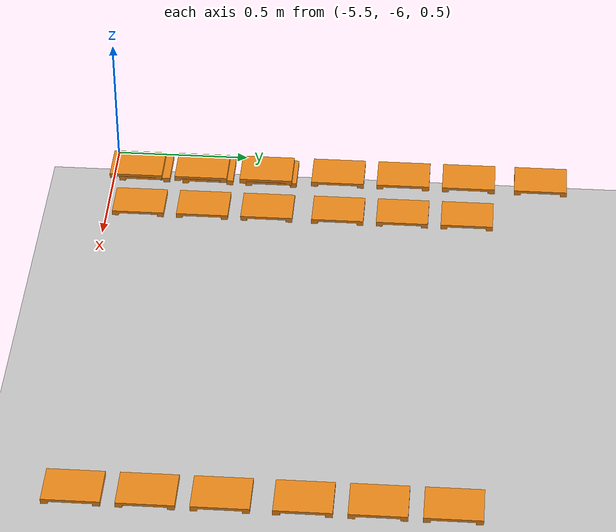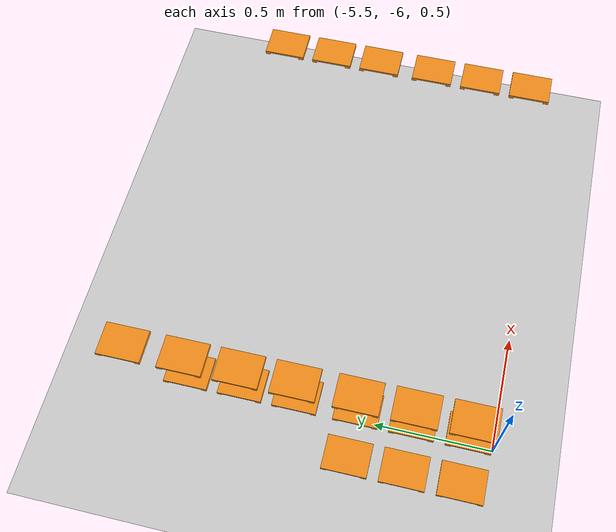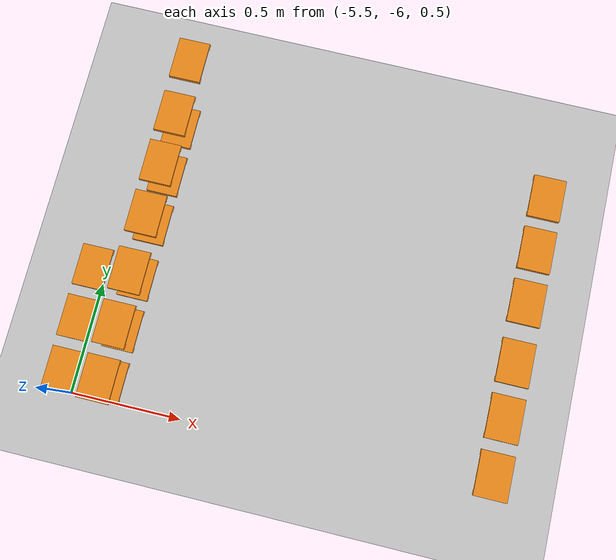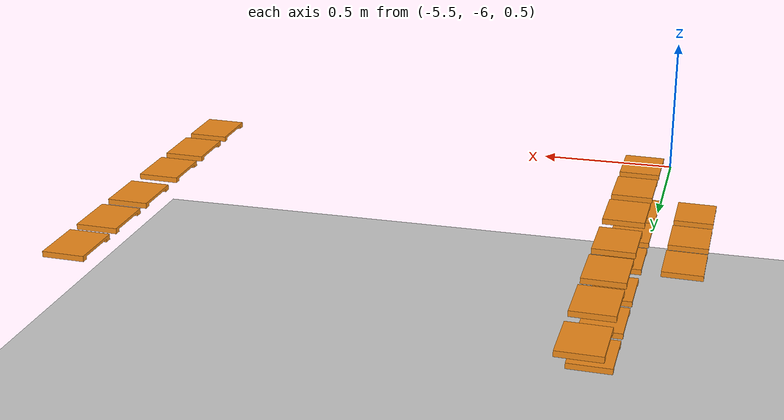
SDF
<sdf version="1.7">
 <world name="default">
  <model name="ground_plane">
   <static>1</static>
   <link name="link">
    <collision name="collision">
     <geometry><plane><normal>0 0 1</normal><size>100 100</size></plane></geometry>
     <surface>
      <contact><collide_bitmask>65535</collide_bitmask></contact>
      <friction><ode><mu>1</mu><mu2>1</mu2></ode></friction>
     </surface>
    </collision>
    <visual name="visual">
     <cast_shadows>0</cast_shadows>
     <geometry><plane><normal>0 0 1</normal><size>100 100</size></plane></geometry>
     <material>
      <script><uri>file://media/materials/scripts/gazebo.material</uri><name>Gazebo/Grey</name></script>
     </material>
    </visual>
   </link>
  </model>
  <model name="pallet_34">
   <pose>-5.61418 -5.6625 0.331021 1.5e-05 -0.012626 -5e-06</pose>
   <link name="link">
    <inertial>
     <pose>0 0 0 0 -0 1.571</pose>
     <inertia>
      <ixx>0.00220983</ixx>
      <ixy>0</ixy>
      <ixz>0</ixz>
      <iyy>0.00128087</iyy>
      <iyz>0</iyz>
      <izz>0.00244903</izz>
     </inertia>
     <mass>0.01</mass>
    </inertial>
    <visual name="visual1">
     <cast_shadows>0</cast_shadows>
     <geometry><mesh><uri>model://pallet/meshes/pallet.stl</uri></mesh></geometry>
     <material>
      <script><uri>file://media/materials/scripts/gazebo.material</uri><name>Gazebo/Orange</name></script>
      <shader type="pixel"><normal_map>__default__</normal_map></shader>
      <emissive>0 0 0 1</emissive>
     </material>
     <pose>0 0 -0 0 -0 1.571</pose>
    </visual>
    <collision name="collision_0">
     <pose>0 0 0 0 -0 1.571</pose>
     <geometry><mesh><uri>model://pallet/meshes/pallet.stl</uri></mesh></geometry>
     <surface>
      <friction>
       <ode><mu>1</mu><mu2>1</mu2><fdir1>0 0 0</fdir1><slip1>0</slip1><slip2>0</slip2></ode>
       <torsional>
        <coefficient>1</coefficient>
        <patch_radius>0</patch_radius>
        <surface_radius>0</surface_radius>
        <use_patch_radius>1</use_patch_radius>
        <ode><slip>0</slip></ode>
       </torsional>
      </friction>
      <bounce><restitution_coefficient>0</restitution_coefficient><threshold>1e+06</threshold></bounce>
      <contact>
       <collide_without_contact>0</collide_without_contact>
       <collide_without_contact_bitmask>1</collide_without_contact_bitmask>
       <collide_bitmask>1</collide_bitmask>
       <ode>
        <soft_cfm>0</soft_cfm>
        <soft_erp>0.2</soft_erp>
        <kp>1e+13</kp>
        <kd>1</kd>
        <max_vel>0.01</max_vel>
        <min_depth>0</min_depth>
       </ode>
       <bullet>
        <split_impulse>1</split_impulse>
        <split_impulse_penetration_threshold>-0.01</split_impulse_penetration_threshold>
        <soft_cfm>0</soft_cfm>
        <soft_erp>0.2</soft_erp>
        <kp>1e+13</kp>
        <kd>1</kd>
       </bullet>
      </contact>
     </surface>
    </collision>
   </link>
   <static>0</static>
  </model>
  <model name="pallet_35">
   <pose>-5.61419 -5.4125 0.331022 1.6e-05 -0.012625 4e-06</pose>
   <link name="link">
    <inertial>
     <pose>0 0 0 0 -0 1.571</pose>
     <inertia>
      <ixx>0.00220983</ixx>
      <ixy>0</ixy>
      <ixz>0</ixz>
      <iyy>0.00128087</iyy>
      <iyz>0</iyz>
      <izz>0.00244903</izz>
     </inertia>
     <mass>0.01</mass>
    </inertial>
    <visual name="visual1">
     <cast_shadows>0</cast_shadows>
     <geometry><mesh><uri>model://pallet/meshes/pallet.stl</uri></mesh></geometry>
     <material>
      <script><uri>file://media/materials/scripts/gazebo.material</uri><name>Gazebo/Orange</name></script>
      <shader type="pixel"><normal_map>__default__</normal_map></shader>
      <emissive>0 0 0 1</emissive>
     </material>
     <pose>0 0 -0 0 -0 1.571</pose>
    </visual>
    <collision name="collision_0">
     <pose>0 0 0 0 -0 1.571</pose>
     <geometry><mesh><uri>model://pallet/meshes/pallet.stl</uri></mesh></geometry>
     <surface>
      <friction>
       <ode><mu>1</mu><mu2>1</mu2><fdir1>0 0 0</fdir1><slip1>0</slip1><slip2>0</slip2></ode>
       <torsional>
        <coefficient>1</coefficient>
        <patch_radius>0</patch_radius>
        <surface_radius>0</surface_radius>
        <use_patch_radius>1</use_patch_radius>
        <ode><slip>0</slip></ode>
       </torsional>
      </friction>
      <bounce><restitution_coefficient>0</restitution_coefficient><threshold>1e+06</threshold></bounce>
      <contact>
       <collide_without_contact>0</collide_without_contact>
       <collide_without_contact_bitmask>1</collide_without_contact_bitmask>
       <collide_bitmask>1</collide_bitmask>
       <ode>
        <soft_cfm>0</soft_cfm>
        <soft_erp>0.2</soft_erp>
        <kp>1e+13</kp>
        <kd>1</kd>
        <max_vel>0.01</max_vel>
        <min_depth>0</min_depth>
       </ode>
       <bullet>
        <split_impulse>1</split_impulse>
        <split_impulse_penetration_threshold>-0.01</split_impulse_penetration_threshold>
        <soft_cfm>0</soft_cfm>
        <soft_erp>0.2</soft_erp>
        <kp>1e+13</kp>
        <kd>1</kd>
       </bullet>
      </contact>
     </surface>
    </collision>
   </link>
   <static>0</static>
  </model>
  <model name="pallet_36">
   <pose>-5.61418 -5.9125 0.33102 2.8e-05 -0.012626 7e-06</pose>
   <link name="link">
    <inertial>
     <pose>0 0 0 0 -0 1.571</pose>
     <inertia>
      <ixx>0.00220983</ixx>
      <ixy>0</ixy>
      <ixz>0</ixz>
      <iyy>0.00128087</iyy>
      <iyz>0</iyz>
      <izz>0.00244903</izz>
     </inertia>
     <mass>0.01</mass>
    </inertial>
    <visual name="visual1">
     <cast_shadows>0</cast_shadows>
     <geometry><mesh><uri>model://pallet/meshes/pallet.stl</uri></mesh></geometry>
     <material>
      <script><uri>file://media/materials/scripts/gazebo.material</uri><name>Gazebo/Orange</name></script>
      <shader type="pixel"><normal_map>__default__</normal_map></shader>
      <emissive>0 0 0 1</emissive>
     </material>
     <pose>0 0 -0 0 -0 1.571</pose>
    </visual>
    <collision name="collision_0">
     <pose>0 0 0 0 -0 1.571</pose>
     <geometry><mesh><uri>model://pallet/meshes/pallet.stl</uri></mesh></geometry>
     <surface>
      <friction>
       <ode><mu>1</mu><mu2>1</mu2><fdir1>0 0 0</fdir1><slip1>0</slip1><slip2>0</slip2></ode>
       <torsional>
        <coefficient>1</coefficient>
        <patch_radius>0</patch_radius>
        <surface_radius>0</surface_radius>
        <use_patch_radius>1</use_patch_radius>
        <ode><slip>0</slip></ode>
       </torsional>
      </friction>
      <bounce><restitution_coefficient>0</restitution_coefficient><threshold>1e+06</threshold></bounce>
      <contact>
       <collide_without_contact>0</collide_without_contact>
       <collide_without_contact_bitmask>1</collide_without_contact_bitmask>
       <collide_bitmask>1</collide_bitmask>
       <ode>
        <soft_cfm>0</soft_cfm>
        <soft_erp>0.2</soft_erp>
        <kp>1e+13</kp>
        <kd>1</kd>
        <max_vel>0.01</max_vel>
        <min_depth>0</min_depth>
       </ode>
       <bullet>
        <split_impulse>1</split_impulse>
        <split_impulse_penetration_threshold>-0.01</split_impulse_penetration_threshold>
        <soft_cfm>0</soft_cfm>
        <soft_erp>0.2</soft_erp>
        <kp>1e+13</kp>
        <kd>1</kd>
       </bullet>
      </contact>
     </surface>
    </collision>
   </link>
   <static>0</static>
  </model>
  <model name="pallet_54">
   <pose>-5.39623 -4.3625 0.511048 2.9e-05 -0.012153 1.1e-05</pose>
   <link name="link">
    <inertial>
     <pose>0 0 0 0 -0 1.571</pose>
     <inertia>
      <ixx>0.00220983</ixx>
      <ixy>0</ixy>
      <ixz>0</ixz>
      <iyy>0.00128087</iyy>
      <iyz>0</iyz>
      <izz>0.00244903</izz>
     </inertia>
     <mass>0.01</mass>
    </inertial>
    <visual name="visual1">
     <cast_shadows>0</cast_shadows>
     <geometry><mesh><uri>model://pallet/meshes/pallet.stl</uri></mesh></geometry>
     <material>
      <script><uri>file://media/materials/scripts/gazebo.material</uri><name>Gazebo/Orange</name></script>
      <shader type="pixel"><normal_map>__default__</normal_map></shader>
      <emissive>0 0 0 1</emissive>
     </material>
     <pose>0 0 -0 0 -0 1.571</pose>
    </visual>
    <collision name="collision_0">
     <pose>0 0 0 0 -0 1.571</pose>
     <geometry><mesh><uri>model://pallet/meshes/pallet.stl</uri></mesh></geometry>
     <surface>
      <friction>
       <ode><mu>1</mu><mu2>1</mu2><fdir1>0 0 0</fdir1><slip1>0</slip1><slip2>0</slip2></ode>
       <torsional>
        <coefficient>1</coefficient>
        <patch_radius>0</patch_radius>
        <surface_radius>0</surface_radius>
        <use_patch_radius>1</use_patch_radius>
        <ode><slip>0</slip></ode>
       </torsional>
      </friction>
      <bounce><restitution_coefficient>0</restitution_coefficient><threshold>1e+06</threshold></bounce>
      <contact>
       <collide_without_contact>0</collide_without_contact>
       <collide_without_contact_bitmask>1</collide_without_contact_bitmask>
       <collide_bitmask>1</collide_bitmask>
       <ode>
        <soft_cfm>0</soft_cfm>
        <soft_erp>0.2</soft_erp>
        <kp>1e+13</kp>
        <kd>1</kd>
        <max_vel>0.01</max_vel>
        <min_depth>0</min_depth>
       </ode>
       <bullet>
        <split_impulse>1</split_impulse>
        <split_impulse_penetration_threshold>-0.01</split_impulse_penetration_threshold>
        <soft_cfm>0</soft_cfm>
        <soft_erp>0.2</soft_erp>
        <kp>1e+13</kp>
        <kd>1</kd>
       </bullet>
      </contact>
     </surface>
    </collision>
   </link>
   <static>0</static>
  </model>
  <model name="pallet_55">
   <pose>-5.39623 -4.887 0.511046 4.2e-05 -0.012154 -1.4e-05</pose>
   <link name="link">
    <inertial>
     <pose>0 0 0 0 -0 1.571</pose>
     <inertia>
      <ixx>0.00220983</ixx>
      <ixy>0</ixy>
      <ixz>0</ixz>
      <iyy>0.00128087</iyy>
      <iyz>0</iyz>
      <izz>0.00244903</izz>
     </inertia>
     <mass>0.01</mass>
    </inertial>
    <visual name="visual1">
     <cast_shadows>0</cast_shadows>
     <geometry><mesh><uri>model://pallet/meshes/pallet.stl</uri></mesh></geometry>
     <material>
      <script><uri>file://media/materials/scripts/gazebo.material</uri><name>Gazebo/Orange</name></script>
      <shader type="pixel"><normal_map>__default__</normal_map></shader>
      <emissive>0 0 0 1</emissive>
     </material>
     <pose>0 0 -0 0 -0 1.571</pose>
    </visual>
    <collision name="collision_0">
     <pose>0 0 0 0 -0 1.571</pose>
     <geometry><mesh><uri>model://pallet/meshes/pallet.stl</uri></mesh></geometry>
     <surface>
      <friction>
       <ode><mu>1</mu><mu2>1</mu2><fdir1>0 0 0</fdir1><slip1>0</slip1><slip2>0</slip2></ode>
       <torsional>
        <coefficient>1</coefficient>
        <patch_radius>0</patch_radius>
        <surface_radius>0</surface_radius>
        <use_patch_radius>1</use_patch_radius>
        <ode><slip>0</slip></ode>
       </torsional>
      </friction>
      <bounce><restitution_coefficient>0</restitution_coefficient><threshold>1e+06</threshold></bounce>
      <contact>
       <collide_without_contact>0</collide_without_contact>
       <collide_without_contact_bitmask>1</collide_without_contact_bitmask>
       <collide_bitmask>1</collide_bitmask>
       <ode>
        <soft_cfm>0</soft_cfm>
        <soft_erp>0.2</soft_erp>
        <kp>1e+13</kp>
        <kd>1</kd>
        <max_vel>0.01</max_vel>
        <min_depth>0</min_depth>
       </ode>
       <bullet>
        <split_impulse>1</split_impulse>
        <split_impulse_penetration_threshold>-0.01</split_impulse_penetration_threshold>
        <soft_cfm>0</soft_cfm>
        <soft_erp>0.2</soft_erp>
        <kp>1e+13</kp>
        <kd>1</kd>
       </bullet>
      </contact>
     </surface>
    </collision>
   </link>
   <static>0</static>
  </model>
  <model name="pallet_56">
   <pose>-5.39623 -4.637 0.511048 1.1e-05 -0.012153 1.6e-05</pose>
   <link name="link">
    <inertial>
     <pose>0 0 0 0 -0 1.571</pose>
     <inertia>
      <ixx>0.00220983</ixx>
      <ixy>0</ixy>
      <ixz>0</ixz>
      <iyy>0.00128087</iyy>
      <iyz>0</iyz>
      <izz>0.00244903</izz>
     </inertia>
     <mass>0.01</mass>
    </inertial>
    <visual name="visual1">
     <cast_shadows>0</cast_shadows>
     <geometry><mesh><uri>model://pallet/meshes/pallet.stl</uri></mesh></geometry>
     <material>
      <script><uri>file://media/materials/scripts/gazebo.material</uri><name>Gazebo/Orange</name></script>
      <shader type="pixel"><normal_map>__default__</normal_map></shader>
      <emissive>0 0 0 1</emissive>
     </material>
     <pose>0 0 -0 0 -0 1.571</pose>
    </visual>
    <collision name="collision_0">
     <pose>0 0 0 0 -0 1.571</pose>
     <geometry><mesh><uri>model://pallet/meshes/pallet.stl</uri></mesh></geometry>
     <surface>
      <friction>
       <ode><mu>1</mu><mu2>1</mu2><fdir1>0 0 0</fdir1><slip1>0</slip1><slip2>0</slip2></ode>
       <torsional>
        <coefficient>1</coefficient>
        <patch_radius>0</patch_radius>
        <surface_radius>0</surface_radius>
        <use_patch_radius>1</use_patch_radius>
        <ode><slip>0</slip></ode>
       </torsional>
      </friction>
      <bounce><restitution_coefficient>0</restitution_coefficient><threshold>1e+06</threshold></bounce>
      <contact>
       <collide_without_contact>0</collide_without_contact>
       <collide_without_contact_bitmask>1</collide_without_contact_bitmask>
       <collide_bitmask>1</collide_bitmask>
       <ode>
        <soft_cfm>0</soft_cfm>
        <soft_erp>0.2</soft_erp>
        <kp>1e+13</kp>
        <kd>1</kd>
        <max_vel>0.01</max_vel>
        <min_depth>0</min_depth>
       </ode>
       <bullet>
        <split_impulse>1</split_impulse>
        <split_impulse_penetration_threshold>-0.01</split_impulse_penetration_threshold>
        <soft_cfm>0</soft_cfm>
        <soft_erp>0.2</soft_erp>
        <kp>1e+13</kp>
        <kd>1</kd>
       </bullet>
      </contact>
     </surface>
    </collision>
   </link>
   <static>0</static>
  </model>
  <model name="pallet_57">
   <pose>-5.39622 -5.137 0.511045 3.9e-05 -0.012156 9e-06</pose>
   <link name="link">
    <inertial>
     <pose>0 0 0 0 -0 1.571</pose>
     <inertia>
      <ixx>0.00220983</ixx>
      <ixy>0</ixy>
      <ixz>0</ixz>
      <iyy>0.00128087</iyy>
      <iyz>0</iyz>
      <izz>0.00244903</izz>
     </inertia>
     <mass>0.01</mass>
    </inertial>
    <visual name="visual1">
     <cast_shadows>0</cast_shadows>
     <geometry><mesh><uri>model://pallet/meshes/pallet.stl</uri></mesh></geometry>
     <material>
      <script><uri>file://media/materials/scripts/gazebo.material</uri><name>Gazebo/Orange</name></script>
      <shader type="pixel"><normal_map>__default__</normal_map></shader>
      <emissive>0 0 0 1</emissive>
     </material>
     <pose>0 0 -0 0 -0 1.571</pose>
    </visual>
    <collision name="collision_0">
     <pose>0 0 0 0 -0 1.571</pose>
     <geometry><mesh><uri>model://pallet/meshes/pallet.stl</uri></mesh></geometry>
     <surface>
      <friction>
       <ode><mu>1</mu><mu2>1</mu2><fdir1>0 0 0</fdir1><slip1>0</slip1><slip2>0</slip2></ode>
       <torsional>
        <coefficient>1</coefficient>
        <patch_radius>0</patch_radius>
        <surface_radius>0</surface_radius>
        <use_patch_radius>1</use_patch_radius>
        <ode><slip>0</slip></ode>
       </torsional>
      </friction>
      <bounce><restitution_coefficient>0</restitution_coefficient><threshold>1e+06</threshold></bounce>
      <contact>
       <collide_without_contact>0</collide_without_contact>
       <collide_without_contact_bitmask>1</collide_without_contact_bitmask>
       <collide_bitmask>1</collide_bitmask>
       <ode>
        <soft_cfm>0</soft_cfm>
        <soft_erp>0.2</soft_erp>
        <kp>1e+13</kp>
        <kd>1</kd>
        <max_vel>0.01</max_vel>
        <min_depth>0</min_depth>
       </ode>
       <bullet>
        <split_impulse>1</split_impulse>
        <split_impulse_penetration_threshold>-0.01</split_impulse_penetration_threshold>
        <soft_cfm>0</soft_cfm>
        <soft_erp>0.2</soft_erp>
        <kp>1e+13</kp>
        <kd>1</kd>
       </bullet>
      </contact>
     </surface>
    </collision>
   </link>
   <static>0</static>
  </model>
  <model name="pallet_58">
   <pose>-5.39622 -5.6625 0.511044 2.8e-05 -0.012155 -1.1e-05</pose>
   <link name="link">
    <inertial>
     <pose>0 0 0 0 -0 1.571</pose>
     <inertia>
      <ixx>0.00220983</ixx>
      <ixy>0</ixy>
      <ixz>0</ixz>
      <iyy>0.00128087</iyy>
      <iyz>0</iyz>
      <izz>0.00244903</izz>
     </inertia>
     <mass>0.01</mass>
    </inertial>
    <visual name="visual1">
     <cast_shadows>0</cast_shadows>
     <geometry><mesh><uri>model://pallet/meshes/pallet.stl</uri></mesh></geometry>
     <material>
      <script><uri>file://media/materials/scripts/gazebo.material</uri><name>Gazebo/Orange</name></script>
      <shader type="pixel"><normal_map>__default__</normal_map></shader>
      <emissive>0 0 0 1</emissive>
     </material>
     <pose>0 0 -0 0 -0 1.571</pose>
    </visual>
    <collision name="collision_0">
     <pose>0 0 0 0 -0 1.571</pose>
     <geometry><mesh><uri>model://pallet/meshes/pallet.stl</uri></mesh></geometry>
     <surface>
      <friction>
       <ode><mu>1</mu><mu2>1</mu2><fdir1>0 0 0</fdir1><slip1>0</slip1><slip2>0</slip2></ode>
       <torsional>
        <coefficient>1</coefficient>
        <patch_radius>0</patch_radius>
        <surface_radius>0</surface_radius>
        <use_patch_radius>1</use_patch_radius>
        <ode><slip>0</slip></ode>
       </torsional>
      </friction>
      <bounce><restitution_coefficient>0</restitution_coefficient><threshold>1e+06</threshold></bounce>
      <contact>
       <collide_without_contact>0</collide_without_contact>
       <collide_without_contact_bitmask>1</collide_without_contact_bitmask>
       <collide_bitmask>1</collide_bitmask>
       <ode>
        <soft_cfm>0</soft_cfm>
        <soft_erp>0.2</soft_erp>
        <kp>1e+13</kp>
        <kd>1</kd>
        <max_vel>0.01</max_vel>
        <min_depth>0</min_depth>
       </ode>
       <bullet>
        <split_impulse>1</split_impulse>
        <split_impulse_penetration_threshold>-0.01</split_impulse_penetration_threshold>
        <soft_cfm>0</soft_cfm>
        <soft_erp>0.2</soft_erp>
        <kp>1e+13</kp>
        <kd>1</kd>
       </bullet>
      </contact>
     </surface>
    </collision>
   </link>
   <static>0</static>
  </model>
  <model name="pallet_59">
   <pose>-5.39622 -5.4125 0.511046 1.2e-05 -0.012154 2.4e-05</pose>
   <link name="link">
    <inertial>
     <pose>0 0 0 0 -0 1.571</pose>
     <inertia>
      <ixx>0.00220983</ixx>
      <ixy>0</ixy>
      <ixz>0</ixz>
      <iyy>0.00128087</iyy>
      <iyz>0</iyz>
      <izz>0.00244903</izz>
     </inertia>
     <mass>0.01</mass>
    </inertial>
    <visual name="visual1">
     <cast_shadows>0</cast_shadows>
     <geometry><mesh><uri>model://pallet/meshes/pallet.stl</uri></mesh></geometry>
     <material>
      <script><uri>file://media/materials/scripts/gazebo.material</uri><name>Gazebo/Orange</name></script>
      <shader type="pixel"><normal_map>__default__</normal_map></shader>
      <emissive>0 0 0 1</emissive>
     </material>
     <pose>0 0 -0 0 -0 1.571</pose>
    </visual>
    <collision name="collision_0">
     <pose>0 0 0 0 -0 1.571</pose>
     <geometry><mesh><uri>model://pallet/meshes/pallet.stl</uri></mesh></geometry>
     <surface>
      <friction>
       <ode><mu>1</mu><mu2>1</mu2><fdir1>0 0 0</fdir1><slip1>0</slip1><slip2>0</slip2></ode>
       <torsional>
        <coefficient>1</coefficient>
        <patch_radius>0</patch_radius>
        <surface_radius>0</surface_radius>
        <use_patch_radius>1</use_patch_radius>
        <ode><slip>0</slip></ode>
       </torsional>
      </friction>
      <bounce><restitution_coefficient>0</restitution_coefficient><threshold>1e+06</threshold></bounce>
      <contact>
       <collide_without_contact>0</collide_without_contact>
       <collide_without_contact_bitmask>1</collide_without_contact_bitmask>
       <collide_bitmask>1</collide_bitmask>
       <ode>
        <soft_cfm>0</soft_cfm>
        <soft_erp>0.2</soft_erp>
        <kp>1e+13</kp>
        <kd>1</kd>
        <max_vel>0.01</max_vel>
        <min_depth>0</min_depth>
       </ode>
       <bullet>
        <split_impulse>1</split_impulse>
        <split_impulse_penetration_threshold>-0.01</split_impulse_penetration_threshold>
        <soft_cfm>0</soft_cfm>
        <soft_erp>0.2</soft_erp>
        <kp>1e+13</kp>
        <kd>1</kd>
       </bullet>
      </contact>
     </surface>
    </collision>
   </link>
   <static>0</static>
  </model>
  <model name="pallet_60">
   <pose>-5.39622 -5.9125 0.511043 2.1e-05 -0.012154 3e-06</pose>
   <link name="link">
    <inertial>
     <pose>0 0 0 0 -0 1.571</pose>
     <inertia>
      <ixx>0.00220983</ixx>
      <ixy>0</ixy>
      <ixz>0</ixz>
      <iyy>0.00128087</iyy>
      <iyz>0</iyz>
      <izz>0.00244903</izz>
     </inertia>
     <mass>0.01</mass>
    </inertial>
    <visual name="visual1">
     <cast_shadows>0</cast_shadows>
     <geometry><mesh><uri>model://pallet/meshes/pallet.stl</uri></mesh></geometry>
     <material>
      <script><uri>file://media/materials/scripts/gazebo.material</uri><name>Gazebo/Orange</name></script>
      <shader type="pixel"><normal_map>__default__</normal_map></shader>
      <emissive>0 0 0 1</emissive>
     </material>
     <pose>0 0 -0 0 -0 1.571</pose>
    </visual>
    <collision name="collision_0">
     <pose>0 0 0 0 -0 1.571</pose>
     <geometry><mesh><uri>model://pallet/meshes/pallet.stl</uri></mesh></geometry>
     <surface>
      <friction>
       <ode><mu>1</mu><mu2>1</mu2><fdir1>0 0 0</fdir1><slip1>0</slip1><slip2>0</slip2></ode>
       <torsional>
        <coefficient>1</coefficient>
        <patch_radius>0</patch_radius>
        <surface_radius>0</surface_radius>
        <use_patch_radius>1</use_patch_radius>
        <ode><slip>0</slip></ode>
       </torsional>
      </friction>
      <bounce><restitution_coefficient>0</restitution_coefficient><threshold>1e+06</threshold></bounce>
      <contact>
       <collide_without_contact>0</collide_without_contact>
       <collide_without_contact_bitmask>1</collide_without_contact_bitmask>
       <collide_bitmask>1</collide_bitmask>
       <ode>
        <soft_cfm>0</soft_cfm>
        <soft_erp>0.2</soft_erp>
        <kp>1e+13</kp>
        <kd>1</kd>
        <max_vel>0.01</max_vel>
        <min_depth>0</min_depth>
       </ode>
       <bullet>
        <split_impulse>1</split_impulse>
        <split_impulse_penetration_threshold>-0.01</split_impulse_penetration_threshold>
        <soft_cfm>0</soft_cfm>
        <soft_erp>0.2</soft_erp>
        <kp>1e+13</kp>
        <kd>1</kd>
       </bullet>
      </contact>
     </surface>
    </collision>
   </link>
   <static>0</static>
  </model>
  <model name="pallet_67">
   <pose>-5.39404 -4.887 0.331059 2.9e-05 -0.012155 3e-06</pose>
   <link name="link">
    <inertial>
     <pose>0 0 0 0 -0 1.571</pose>
     <inertia>
      <ixx>0.00220983</ixx>
      <ixy>0</ixy>
      <ixz>0</ixz>
      <iyy>0.00128087</iyy>
      <iyz>0</iyz>
      <izz>0.00244903</izz>
     </inertia>
     <mass>0.01</mass>
    </inertial>
    <visual name="visual1">
     <cast_shadows>0</cast_shadows>
     <geometry><mesh><uri>model://pallet/meshes/pallet.stl</uri></mesh></geometry>
     <material>
      <script><uri>file://media/materials/scripts/gazebo.material</uri><name>Gazebo/Orange</name></script>
      <shader type="pixel"><normal_map>__default__</normal_map></shader>
      <emissive>0 0 0 1</emissive>
     </material>
     <pose>0 0 -0 0 -0 1.571</pose>
    </visual>
    <collision name="collision_0">
     <pose>0 0 0 0 -0 1.571</pose>
     <geometry><mesh><uri>model://pallet/meshes/pallet.stl</uri></mesh></geometry>
     <surface>
      <friction>
       <ode><mu>1</mu><mu2>1</mu2><fdir1>0 0 0</fdir1><slip1>0</slip1><slip2>0</slip2></ode>
       <torsional>
        <coefficient>1</coefficient>
        <patch_radius>0</patch_radius>
        <surface_radius>0</surface_radius>
        <use_patch_radius>1</use_patch_radius>
        <ode><slip>0</slip></ode>
       </torsional>
      </friction>
      <bounce><restitution_coefficient>0</restitution_coefficient><threshold>1e+06</threshold></bounce>
      <contact>
       <collide_without_contact>0</collide_without_contact>
       <collide_without_contact_bitmask>1</collide_without_contact_bitmask>
       <collide_bitmask>1</collide_bitmask>
       <ode>
        <soft_cfm>0</soft_cfm>
        <soft_erp>0.2</soft_erp>
        <kp>1e+13</kp>
        <kd>1</kd>
        <max_vel>0.01</max_vel>
        <min_depth>0</min_depth>
       </ode>
       <bullet>
        <split_impulse>1</split_impulse>
        <split_impulse_penetration_threshold>-0.01</split_impulse_penetration_threshold>
        <soft_cfm>0</soft_cfm>
        <soft_erp>0.2</soft_erp>
        <kp>1e+13</kp>
        <kd>1</kd>
       </bullet>
      </contact>
     </surface>
    </collision>
   </link>
   <static>0</static>
  </model>
  <model name="pallet_68">
   <pose>-5.39404 -4.637 0.331062 1.9e-05 -0.012153 9e-06</pose>
   <link name="link">
    <inertial>
     <pose>0 0 0 0 -0 1.571</pose>
     <inertia>
      <ixx>0.00220983</ixx>
      <ixy>0</ixy>
      <ixz>0</ixz>
      <iyy>0.00128087</iyy>
      <iyz>0</iyz>
      <izz>0.00244903</izz>
     </inertia>
     <mass>0.01</mass>
    </inertial>
    <visual name="visual1">
     <cast_shadows>0</cast_shadows>
     <geometry><mesh><uri>model://pallet/meshes/pallet.stl</uri></mesh></geometry>
     <material>
      <script><uri>file://media/materials/scripts/gazebo.material</uri><name>Gazebo/Orange</name></script>
      <shader type="pixel"><normal_map>__default__</normal_map></shader>
      <emissive>0 0 0 1</emissive>
     </material>
     <pose>0 0 -0 0 -0 1.571</pose>
    </visual>
    <collision name="collision_0">
     <pose>0 0 0 0 -0 1.571</pose>
     <geometry><mesh><uri>model://pallet/meshes/pallet.stl</uri></mesh></geometry>
     <surface>
      <friction>
       <ode><mu>1</mu><mu2>1</mu2><fdir1>0 0 0</fdir1><slip1>0</slip1><slip2>0</slip2></ode>
       <torsional>
        <coefficient>1</coefficient>
        <patch_radius>0</patch_radius>
        <surface_radius>0</surface_radius>
        <use_patch_radius>1</use_patch_radius>
        <ode><slip>0</slip></ode>
       </torsional>
      </friction>
      <bounce><restitution_coefficient>0</restitution_coefficient><threshold>1e+06</threshold></bounce>
      <contact>
       <collide_without_contact>0</collide_without_contact>
       <collide_without_contact_bitmask>1</collide_without_contact_bitmask>
       <collide_bitmask>1</collide_bitmask>
       <ode>
        <soft_cfm>0</soft_cfm>
        <soft_erp>0.2</soft_erp>
        <kp>1e+13</kp>
        <kd>1</kd>
        <max_vel>0.01</max_vel>
        <min_depth>0</min_depth>
       </ode>
       <bullet>
        <split_impulse>1</split_impulse>
        <split_impulse_penetration_threshold>-0.01</split_impulse_penetration_threshold>
        <soft_cfm>0</soft_cfm>
        <soft_erp>0.2</soft_erp>
        <kp>1e+13</kp>
        <kd>1</kd>
       </bullet>
      </contact>
     </surface>
    </collision>
   </link>
   <static>0</static>
  </model>
  <model name="pallet_69">
   <pose>-5.39403 -5.137 0.331059 2.9e-05 -0.012154 8e-06</pose>
   <link name="link">
    <inertial>
     <pose>0 0 0 0 -0 1.571</pose>
     <inertia>
      <ixx>0.00220983</ixx>
      <ixy>0</ixy>
      <ixz>0</ixz>
      <iyy>0.00128087</iyy>
      <iyz>0</iyz>
      <izz>0.00244903</izz>
     </inertia>
     <mass>0.01</mass>
    </inertial>
    <visual name="visual1">
     <cast_shadows>0</cast_shadows>
     <geometry><mesh><uri>model://pallet/meshes/pallet.stl</uri></mesh></geometry>
     <material>
      <script><uri>file://media/materials/scripts/gazebo.material</uri><name>Gazebo/Orange</name></script>
      <shader type="pixel"><normal_map>__default__</normal_map></shader>
      <emissive>0 0 0 1</emissive>
     </material>
     <pose>0 0 -0 0 -0 1.571</pose>
    </visual>
    <collision name="collision_0">
     <pose>0 0 0 0 -0 1.571</pose>
     <geometry><mesh><uri>model://pallet/meshes/pallet.stl</uri></mesh></geometry>
     <surface>
      <friction>
       <ode><mu>1</mu><mu2>1</mu2><fdir1>0 0 0</fdir1><slip1>0</slip1><slip2>0</slip2></ode>
       <torsional>
        <coefficient>1</coefficient>
        <patch_radius>0</patch_radius>
        <surface_radius>0</surface_radius>
        <use_patch_radius>1</use_patch_radius>
        <ode><slip>0</slip></ode>
       </torsional>
      </friction>
      <bounce><restitution_coefficient>0</restitution_coefficient><threshold>1e+06</threshold></bounce>
      <contact>
       <collide_without_contact>0</collide_without_contact>
       <collide_without_contact_bitmask>1</collide_without_contact_bitmask>
       <collide_bitmask>1</collide_bitmask>
       <ode>
        <soft_cfm>0</soft_cfm>
        <soft_erp>0.2</soft_erp>
        <kp>1e+13</kp>
        <kd>1</kd>
        <max_vel>0.01</max_vel>
        <min_depth>0</min_depth>
       </ode>
       <bullet>
        <split_impulse>1</split_impulse>
        <split_impulse_penetration_threshold>-0.01</split_impulse_penetration_threshold>
        <soft_cfm>0</soft_cfm>
        <soft_erp>0.2</soft_erp>
        <kp>1e+13</kp>
        <kd>1</kd>
       </bullet>
      </contact>
     </surface>
    </collision>
   </link>
   <static>0</static>
  </model>
  <model name="pallet_70">
   <pose>-5.39403 -5.6625 0.331058 2.5e-05 -0.012154 4e-06</pose>
   <link name="link">
    <inertial>
     <pose>0 0 0 0 -0 1.571</pose>
     <inertia>
      <ixx>0.00220983</ixx>
      <ixy>0</ixy>
      <ixz>0</ixz>
      <iyy>0.00128087</iyy>
      <iyz>0</iyz>
      <izz>0.00244903</izz>
     </inertia>
     <mass>0.01</mass>
    </inertial>
    <visual name="visual1">
     <cast_shadows>0</cast_shadows>
     <geometry><mesh><uri>model://pallet/meshes/pallet.stl</uri></mesh></geometry>
     <material>
      <script><uri>file://media/materials/scripts/gazebo.material</uri><name>Gazebo/Orange</name></script>
      <shader type="pixel"><normal_map>__default__</normal_map></shader>
      <emissive>0 0 0 1</emissive>
     </material>
     <pose>0 0 -0 0 -0 1.571</pose>
    </visual>
    <collision name="collision_0">
     <pose>0 0 0 0 -0 1.571</pose>
     <geometry><mesh><uri>model://pallet/meshes/pallet.stl</uri></mesh></geometry>
     <surface>
      <friction>
       <ode><mu>1</mu><mu2>1</mu2><fdir1>0 0 0</fdir1><slip1>0</slip1><slip2>0</slip2></ode>
       <torsional>
        <coefficient>1</coefficient>
        <patch_radius>0</patch_radius>
        <surface_radius>0</surface_radius>
        <use_patch_radius>1</use_patch_radius>
        <ode><slip>0</slip></ode>
       </torsional>
      </friction>
      <bounce><restitution_coefficient>0</restitution_coefficient><threshold>1e+06</threshold></bounce>
      <contact>
       <collide_without_contact>0</collide_without_contact>
       <collide_without_contact_bitmask>1</collide_without_contact_bitmask>
       <collide_bitmask>1</collide_bitmask>
       <ode>
        <soft_cfm>0</soft_cfm>
        <soft_erp>0.2</soft_erp>
        <kp>1e+13</kp>
        <kd>1</kd>
        <max_vel>0.01</max_vel>
        <min_depth>0</min_depth>
       </ode>
       <bullet>
        <split_impulse>1</split_impulse>
        <split_impulse_penetration_threshold>-0.01</split_impulse_penetration_threshold>
        <soft_cfm>0</soft_cfm>
        <soft_erp>0.2</soft_erp>
        <kp>1e+13</kp>
        <kd>1</kd>
       </bullet>
      </contact>
     </surface>
    </collision>
   </link>
   <static>0</static>
  </model>
  <model name="pallet_71">
   <pose>-5.39403 -5.4125 0.331058 1.8e-05 -0.012154 1e-05</pose>
   <link name="link">
    <inertial>
     <pose>0 0 0 0 -0 1.571</pose>
     <inertia>
      <ixx>0.00220983</ixx>
      <ixy>0</ixy>
      <ixz>0</ixz>
      <iyy>0.00128087</iyy>
      <iyz>0</iyz>
      <izz>0.00244903</izz>
     </inertia>
     <mass>0.01</mass>
    </inertial>
    <visual name="visual1">
     <cast_shadows>0</cast_shadows>
     <geometry><mesh><uri>model://pallet/meshes/pallet.stl</uri></mesh></geometry>
     <material>
      <script><uri>file://media/materials/scripts/gazebo.material</uri><name>Gazebo/Orange</name></script>
      <shader type="pixel"><normal_map>__default__</normal_map></shader>
      <emissive>0 0 0 1</emissive>
     </material>
     <pose>0 0 -0 0 -0 1.571</pose>
    </visual>
    <collision name="collision_0">
     <pose>0 0 0 0 -0 1.571</pose>
     <geometry><mesh><uri>model://pallet/meshes/pallet.stl</uri></mesh></geometry>
     <surface>
      <friction>
       <ode><mu>1</mu><mu2>1</mu2><fdir1>0 0 0</fdir1><slip1>0</slip1><slip2>0</slip2></ode>
       <torsional>
        <coefficient>1</coefficient>
        <patch_radius>0</patch_radius>
        <surface_radius>0</surface_radius>
        <use_patch_radius>1</use_patch_radius>
        <ode><slip>0</slip></ode>
       </torsional>
      </friction>
      <bounce><restitution_coefficient>0</restitution_coefficient><threshold>1e+06</threshold></bounce>
      <contact>
       <collide_without_contact>0</collide_without_contact>
       <collide_without_contact_bitmask>1</collide_without_contact_bitmask>
       <collide_bitmask>1</collide_bitmask>
       <ode>
        <soft_cfm>0</soft_cfm>
        <soft_erp>0.2</soft_erp>
        <kp>1e+13</kp>
        <kd>1</kd>
        <max_vel>0.01</max_vel>
        <min_depth>0</min_depth>
       </ode>
       <bullet>
        <split_impulse>1</split_impulse>
        <split_impulse_penetration_threshold>-0.01</split_impulse_penetration_threshold>
        <soft_cfm>0</soft_cfm>
        <soft_erp>0.2</soft_erp>
        <kp>1e+13</kp>
        <kd>1</kd>
       </bullet>
      </contact>
     </surface>
    </collision>
   </link>
   <static>0</static>
  </model>
  <model name="pallet_72">
   <pose>-5.39403 -5.9125 0.331056 3.7e-05 -0.012157 1.2e-05</pose>
   <link name="link">
    <inertial>
     <pose>0 0 0 0 -0 1.571</pose>
     <inertia>
      <ixx>0.00220983</ixx>
      <ixy>0</ixy>
      <ixz>0</ixz>
      <iyy>0.00128087</iyy>
      <iyz>0</iyz>
      <izz>0.00244903</izz>
     </inertia>
     <mass>0.01</mass>
    </inertial>
    <visual name="visual1">
     <cast_shadows>0</cast_shadows>
     <geometry><mesh><uri>model://pallet/meshes/pallet.stl</uri></mesh></geometry>
     <material>
      <script><uri>file://media/materials/scripts/gazebo.material</uri><name>Gazebo/Orange</name></script>
      <shader type="pixel"><normal_map>__default__</normal_map></shader>
      <emissive>0 0 0 1</emissive>
     </material>
     <pose>0 0 -0 0 -0 1.571</pose>
    </visual>
    <collision name="collision_0">
     <pose>0 0 0 0 -0 1.571</pose>
     <geometry><mesh><uri>model://pallet/meshes/pallet.stl</uri></mesh></geometry>
     <surface>
      <friction>
       <ode><mu>1</mu><mu2>1</mu2><fdir1>0 0 0</fdir1><slip1>0</slip1><slip2>0</slip2></ode>
       <torsional>
        <coefficient>1</coefficient>
        <patch_radius>0</patch_radius>
        <surface_radius>0</surface_radius>
        <use_patch_radius>1</use_patch_radius>
        <ode><slip>0</slip></ode>
       </torsional>
      </friction>
      <bounce><restitution_coefficient>0</restitution_coefficient><threshold>1e+06</threshold></bounce>
      <contact>
       <collide_without_contact>0</collide_without_contact>
       <collide_without_contact_bitmask>1</collide_without_contact_bitmask>
       <collide_bitmask>1</collide_bitmask>
       <ode>
        <soft_cfm>0</soft_cfm>
        <soft_erp>0.2</soft_erp>
        <kp>1e+13</kp>
        <kd>1</kd>
        <max_vel>0.01</max_vel>
        <min_depth>0</min_depth>
       </ode>
       <bullet>
        <split_impulse>1</split_impulse>
        <split_impulse_penetration_threshold>-0.01</split_impulse_penetration_threshold>
        <soft_cfm>0</soft_cfm>
        <soft_erp>0.2</soft_erp>
        <kp>1e+13</kp>
        <kd>1</kd>
       </bullet>
      </contact>
     </surface>
    </collision>
   </link>
   <static>0</static>
  </model>
  <model name="pallet_91">
   <pose>-3.61668 -4.887 0.510974 3.9e-05 -0.013043 -1.6e-05</pose>
   <link name="link">
    <inertial>
     <pose>0 0 0 0 -0 1.571</pose>
     <inertia>
      <ixx>0.00220983</ixx>
      <ixy>0</ixy>
      <ixz>0</ixz>
      <iyy>0.00128087</iyy>
      <iyz>0</iyz>
      <izz>0.00244903</izz>
     </inertia>
     <mass>0.01</mass>
    </inertial>
    <visual name="visual1">
     <cast_shadows>0</cast_shadows>
     <geometry><mesh><uri>model://pallet/meshes/pallet.stl</uri></mesh></geometry>
     <material>
      <script><uri>file://media/materials/scripts/gazebo.material</uri><name>Gazebo/Orange</name></script>
      <shader type="pixel"><normal_map>__default__</normal_map></shader>
      <emissive>0 0 0 1</emissive>
     </material>
     <pose>0 0 -0 0 -0 1.571</pose>
    </visual>
    <collision name="collision_0">
     <pose>0 0 0 0 -0 1.571</pose>
     <geometry><mesh><uri>model://pallet/meshes/pallet.stl</uri></mesh></geometry>
     <surface>
      <friction>
       <ode><mu>1</mu><mu2>1</mu2><fdir1>0 0 0</fdir1><slip1>0</slip1><slip2>0</slip2></ode>
       <torsional>
        <coefficient>1</coefficient>
        <patch_radius>0</patch_radius>
        <surface_radius>0</surface_radius>
        <use_patch_radius>1</use_patch_radius>
        <ode><slip>0</slip></ode>
       </torsional>
      </friction>
      <bounce><restitution_coefficient>0</restitution_coefficient><threshold>1e+06</threshold></bounce>
      <contact>
       <collide_without_contact>0</collide_without_contact>
       <collide_without_contact_bitmask>1</collide_without_contact_bitmask>
       <collide_bitmask>1</collide_bitmask>
       <ode>
        <soft_cfm>0</soft_cfm>
        <soft_erp>0.2</soft_erp>
        <kp>1e+13</kp>
        <kd>1</kd>
        <max_vel>0.01</max_vel>
        <min_depth>0</min_depth>
       </ode>
       <bullet>
        <split_impulse>1</split_impulse>
        <split_impulse_penetration_threshold>-0.01</split_impulse_penetration_threshold>
        <soft_cfm>0</soft_cfm>
        <soft_erp>0.2</soft_erp>
        <kp>1e+13</kp>
        <kd>1</kd>
       </bullet>
      </contact>
     </surface>
    </collision>
   </link>
   <static>0</static>
  </model>
  <model name="pallet_92">
   <pose>-3.61668 -4.637 0.510976 2.6e-05 -0.013042 5e-06</pose>
   <link name="link">
    <inertial>
     <pose>0 0 0 0 -0 1.571</pose>
     <inertia>
      <ixx>0.00220983</ixx>
      <ixy>0</ixy>
      <ixz>0</ixz>
      <iyy>0.00128087</iyy>
      <iyz>0</iyz>
      <izz>0.00244903</izz>
     </inertia>
     <mass>0.01</mass>
    </inertial>
    <visual name="visual1">
     <cast_shadows>0</cast_shadows>
     <geometry><mesh><uri>model://pallet/meshes/pallet.stl</uri></mesh></geometry>
     <material>
      <script><uri>file://media/materials/scripts/gazebo.material</uri><name>Gazebo/Orange</name></script>
      <shader type="pixel"><normal_map>__default__</normal_map></shader>
      <emissive>0 0 0 1</emissive>
     </material>
     <pose>0 0 -0 0 -0 1.571</pose>
    </visual>
    <collision name="collision_0">
     <pose>0 0 0 0 -0 1.571</pose>
     <geometry><mesh><uri>model://pallet/meshes/pallet.stl</uri></mesh></geometry>
     <surface>
      <friction>
       <ode><mu>1</mu><mu2>1</mu2><fdir1>0 0 0</fdir1><slip1>0</slip1><slip2>0</slip2></ode>
       <torsional>
        <coefficient>1</coefficient>
        <patch_radius>0</patch_radius>
        <surface_radius>0</surface_radius>
        <use_patch_radius>1</use_patch_radius>
        <ode><slip>0</slip></ode>
       </torsional>
      </friction>
      <bounce><restitution_coefficient>0</restitution_coefficient><threshold>1e+06</threshold></bounce>
      <contact>
       <collide_without_contact>0</collide_without_contact>
       <collide_without_contact_bitmask>1</collide_without_contact_bitmask>
       <collide_bitmask>1</collide_bitmask>
       <ode>
        <soft_cfm>0</soft_cfm>
        <soft_erp>0.2</soft_erp>
        <kp>1e+13</kp>
        <kd>1</kd>
        <max_vel>0.01</max_vel>
        <min_depth>0</min_depth>
       </ode>
       <bullet>
        <split_impulse>1</split_impulse>
        <split_impulse_penetration_threshold>-0.01</split_impulse_penetration_threshold>
        <soft_cfm>0</soft_cfm>
        <soft_erp>0.2</soft_erp>
        <kp>1e+13</kp>
        <kd>1</kd>
       </bullet>
      </contact>
     </surface>
    </collision>
   </link>
   <static>0</static>
  </model>
  <model name="pallet_93">
   <pose>-3.61668 -5.137 0.510974 2.8e-05 -0.013043 0</pose>
   <link name="link">
    <inertial>
     <pose>0 0 0 0 -0 1.571</pose>
     <inertia>
      <ixx>0.00220983</ixx>
      <ixy>0</ixy>
      <ixz>0</ixz>
      <iyy>0.00128087</iyy>
      <iyz>0</iyz>
      <izz>0.00244903</izz>
     </inertia>
     <mass>0.01</mass>
    </inertial>
    <visual name="visual1">
     <cast_shadows>0</cast_shadows>
     <geometry><mesh><uri>model://pallet/meshes/pallet.stl</uri></mesh></geometry>
     <material>
      <script><uri>file://media/materials/scripts/gazebo.material</uri><name>Gazebo/Orange</name></script>
      <shader type="pixel"><normal_map>__default__</normal_map></shader>
      <emissive>0 0 0 1</emissive>
     </material>
     <pose>0 0 -0 0 -0 1.571</pose>
    </visual>
    <collision name="collision_0">
     <pose>0 0 0 0 -0 1.571</pose>
     <geometry><mesh><uri>model://pallet/meshes/pallet.stl</uri></mesh></geometry>
     <surface>
      <friction>
       <ode><mu>1</mu><mu2>1</mu2><fdir1>0 0 0</fdir1><slip1>0</slip1><slip2>0</slip2></ode>
       <torsional>
        <coefficient>1</coefficient>
        <patch_radius>0</patch_radius>
        <surface_radius>0</surface_radius>
        <use_patch_radius>1</use_patch_radius>
        <ode><slip>0</slip></ode>
       </torsional>
      </friction>
      <bounce><restitution_coefficient>0</restitution_coefficient><threshold>1e+06</threshold></bounce>
      <contact>
       <collide_without_contact>0</collide_without_contact>
       <collide_without_contact_bitmask>1</collide_without_contact_bitmask>
       <collide_bitmask>1</collide_bitmask>
       <ode>
        <soft_cfm>0</soft_cfm>
        <soft_erp>0.2</soft_erp>
        <kp>1e+13</kp>
        <kd>1</kd>
        <max_vel>0.01</max_vel>
        <min_depth>0</min_depth>
       </ode>
       <bullet>
        <split_impulse>1</split_impulse>
        <split_impulse_penetration_threshold>-0.01</split_impulse_penetration_threshold>
        <soft_cfm>0</soft_cfm>
        <soft_erp>0.2</soft_erp>
        <kp>1e+13</kp>
        <kd>1</kd>
       </bullet>
      </contact>
     </surface>
    </collision>
   </link>
   <static>0</static>
  </model>
  <model name="pallet_94">
   <pose>-3.61668 -5.6625 0.510972 2.7e-05 -0.013042 -1.4e-05</pose>
   <link name="link">
    <inertial>
     <pose>0 0 0 0 -0 1.571</pose>
     <inertia>
      <ixx>0.00220983</ixx>
      <ixy>0</ixy>
      <ixz>0</ixz>
      <iyy>0.00128087</iyy>
      <iyz>0</iyz>
      <izz>0.00244903</izz>
     </inertia>
     <mass>0.01</mass>
    </inertial>
    <visual name="visual1">
     <cast_shadows>0</cast_shadows>
     <geometry><mesh><uri>model://pallet/meshes/pallet.stl</uri></mesh></geometry>
     <material>
      <script><uri>file://media/materials/scripts/gazebo.material</uri><name>Gazebo/Orange</name></script>
      <shader type="pixel"><normal_map>__default__</normal_map></shader>
      <emissive>0 0 0 1</emissive>
     </material>
     <pose>0 0 -0 0 -0 1.571</pose>
    </visual>
    <collision name="collision_0">
     <pose>0 0 0 0 -0 1.571</pose>
     <geometry><mesh><uri>model://pallet/meshes/pallet.stl</uri></mesh></geometry>
     <surface>
      <friction>
       <ode><mu>1</mu><mu2>1</mu2><fdir1>0 0 0</fdir1><slip1>0</slip1><slip2>0</slip2></ode>
       <torsional>
        <coefficient>1</coefficient>
        <patch_radius>0</patch_radius>
        <surface_radius>0</surface_radius>
        <use_patch_radius>1</use_patch_radius>
        <ode><slip>0</slip></ode>
       </torsional>
      </friction>
      <bounce><restitution_coefficient>0</restitution_coefficient><threshold>1e+06</threshold></bounce>
      <contact>
       <collide_without_contact>0</collide_without_contact>
       <collide_without_contact_bitmask>1</collide_without_contact_bitmask>
       <collide_bitmask>1</collide_bitmask>
       <ode>
        <soft_cfm>0</soft_cfm>
        <soft_erp>0.2</soft_erp>
        <kp>1e+13</kp>
        <kd>1</kd>
        <max_vel>0.01</max_vel>
        <min_depth>0</min_depth>
       </ode>
       <bullet>
        <split_impulse>1</split_impulse>
        <split_impulse_penetration_threshold>-0.01</split_impulse_penetration_threshold>
        <soft_cfm>0</soft_cfm>
        <soft_erp>0.2</soft_erp>
        <kp>1e+13</kp>
        <kd>1</kd>
       </bullet>
      </contact>
     </surface>
    </collision>
   </link>
   <static>0</static>
  </model>
  <model name="pallet_95">
   <pose>-3.61668 -5.4125 0.510975 1.3e-05 -0.013039 5e-06</pose>
   <link name="link">
    <inertial>
     <pose>0 0 0 0 -0 1.571</pose>
     <inertia>
      <ixx>0.00220983</ixx>
      <ixy>0</ixy>
      <ixz>0</ixz>
      <iyy>0.00128087</iyy>
      <iyz>0</iyz>
      <izz>0.00244903</izz>
     </inertia>
     <mass>0.01</mass>
    </inertial>
    <visual name="visual1">
     <cast_shadows>0</cast_shadows>
     <geometry><mesh><uri>model://pallet/meshes/pallet.stl</uri></mesh></geometry>
     <material>
      <script><uri>file://media/materials/scripts/gazebo.material</uri><name>Gazebo/Orange</name></script>
      <shader type="pixel"><normal_map>__default__</normal_map></shader>
      <emissive>0 0 0 1</emissive>
     </material>
     <pose>0 0 -0 0 -0 1.571</pose>
    </visual>
    <collision name="collision_0">
     <pose>0 0 0 0 -0 1.571</pose>
     <geometry><mesh><uri>model://pallet/meshes/pallet.stl</uri></mesh></geometry>
     <surface>
      <friction>
       <ode><mu>1</mu><mu2>1</mu2><fdir1>0 0 0</fdir1><slip1>0</slip1><slip2>0</slip2></ode>
       <torsional>
        <coefficient>1</coefficient>
        <patch_radius>0</patch_radius>
        <surface_radius>0</surface_radius>
        <use_patch_radius>1</use_patch_radius>
        <ode><slip>0</slip></ode>
       </torsional>
      </friction>
      <bounce><restitution_coefficient>0</restitution_coefficient><threshold>1e+06</threshold></bounce>
      <contact>
       <collide_without_contact>0</collide_without_contact>
       <collide_without_contact_bitmask>1</collide_without_contact_bitmask>
       <collide_bitmask>1</collide_bitmask>
       <ode>
        <soft_cfm>0</soft_cfm>
        <soft_erp>0.2</soft_erp>
        <kp>1e+13</kp>
        <kd>1</kd>
        <max_vel>0.01</max_vel>
        <min_depth>0</min_depth>
       </ode>
       <bullet>
        <split_impulse>1</split_impulse>
        <split_impulse_penetration_threshold>-0.01</split_impulse_penetration_threshold>
        <soft_cfm>0</soft_cfm>
        <soft_erp>0.2</soft_erp>
        <kp>1e+13</kp>
        <kd>1</kd>
       </bullet>
      </contact>
     </surface>
    </collision>
   </link>
   <static>0</static>
  </model>
  <model name="pallet_96">
   <pose>-3.61667 -5.9125 0.510972 2.5e-05 -0.013043 7e-06</pose>
   <link name="link">
    <inertial>
     <pose>0 0 0 0 -0 1.571</pose>
     <inertia>
      <ixx>0.00220983</ixx>
      <ixy>0</ixy>
      <ixz>0</ixz>
      <iyy>0.00128087</iyy>
      <iyz>0</iyz>
      <izz>0.00244903</izz>
     </inertia>
     <mass>0.01</mass>
    </inertial>
    <visual name="visual1">
     <cast_shadows>0</cast_shadows>
     <geometry><mesh><uri>model://pallet/meshes/pallet.stl</uri></mesh></geometry>
     <material>
      <script><uri>file://media/materials/scripts/gazebo.material</uri><name>Gazebo/Orange</name></script>
      <shader type="pixel"><normal_map>__default__</normal_map></shader>
      <emissive>0 0 0 1</emissive>
     </material>
     <pose>0 0 -0 0 -0 1.571</pose>
    </visual>
    <collision name="collision_0">
     <pose>0 0 0 0 -0 1.571</pose>
     <geometry><mesh><uri>model://pallet/meshes/pallet.stl</uri></mesh></geometry>
     <surface>
      <friction>
       <ode><mu>1</mu><mu2>1</mu2><fdir1>0 0 0</fdir1><slip1>0</slip1><slip2>0</slip2></ode>
       <torsional>
        <coefficient>1</coefficient>
        <patch_radius>0</patch_radius>
        <surface_radius>0</surface_radius>
        <use_patch_radius>1</use_patch_radius>
        <ode><slip>0</slip></ode>
       </torsional>
      </friction>
      <bounce><restitution_coefficient>0</restitution_coefficient><threshold>1e+06</threshold></bounce>
      <contact>
       <collide_without_contact>0</collide_without_contact>
       <collide_without_contact_bitmask>1</collide_without_contact_bitmask>
       <collide_bitmask>1</collide_bitmask>
       <ode>
        <soft_cfm>0</soft_cfm>
        <soft_erp>0.2</soft_erp>
        <kp>1e+13</kp>
        <kd>1</kd>
        <max_vel>0.01</max_vel>
        <min_depth>0</min_depth>
       </ode>
       <bullet>
        <split_impulse>1</split_impulse>
        <split_impulse_penetration_threshold>-0.01</split_impulse_penetration_threshold>
        <soft_cfm>0</soft_cfm>
        <soft_erp>0.2</soft_erp>
        <kp>1e+13</kp>
        <kd>1</kd>
       </bullet>
      </contact>
     </surface>
    </collision>
   </link>
   <static>0</static>
  </model>
 </world>
</sdf>
